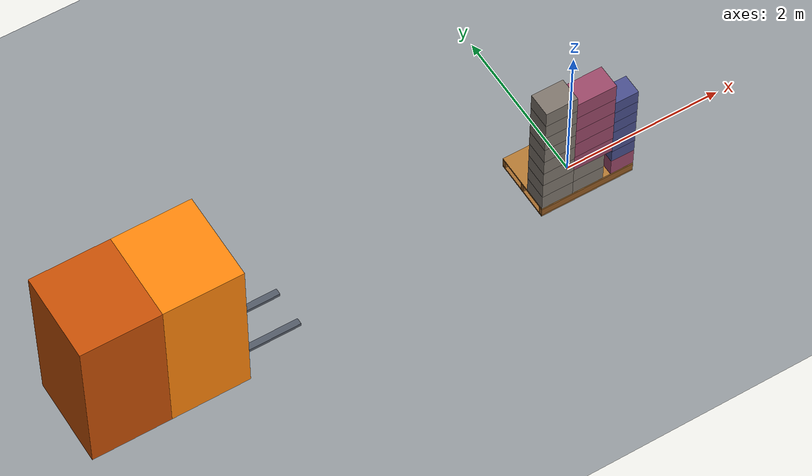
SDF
<sdf version="1.10">
 <world name="pallet_stacker_world">
  <model name="ground_plane">
   <static>true</static>
   <pose>-2.022 0 0 0 0 0</pose>
   <link name="link">
    <collision name="collision">
     <max_contacts>4</max_contacts>
     <geometry><plane><normal>0 0 1</normal><size>20 20</size></plane></geometry>
     <surface>
      <friction>
       <ode><mu>0.8</mu><mu2>0.8</mu2></ode>
       <bullet><friction>0.8</friction><friction2>0.8</friction2></bullet>
      </friction>
      <bounce><restitution_coefficient>0</restitution_coefficient><threshold>100000</threshold></bounce>
      <contact><ode><kp>1000000</kp><kd>100</kd><max_vel>1</max_vel><min_depth>0.0005</min_depth></ode></contact>
     </surface>
    </collision>
    <visual name="visual">
     <geometry><plane><normal>0 0 1</normal><size>20 20</size></plane></geometry>
     <material><ambient>0.58 0.6 0.62 1</ambient><diffuse>0.58 0.6 0.62 1</diffuse></material>
    </visual>
   </link>
  </model>
  <model name="pallet_01_PALLET_001" canonical_link="body">
   <pose>0 0 0.001 0 0 0</pose>
   <static>false</static>
   <frame name="loading_surface" attached_to="body"><pose relative_to="body">0 0 0.144 0 0 0</pose></frame>
   <link name="body">
    <inertial>
     <pose>0 0 0.072 0 0 0</pose>
     <mass>25</mass>
     <inertia>
      <ixx>1.70896776228</ixx>
      <ixy>0</ixy>
      <ixz>0</ixz>
      <iyy>3.07216082337</iyy>
      <iyz>0</iyz>
      <izz>4.63680693891</izz>
     </inertia>
    </inertial>
    <collision name="bottom_deck_collision">
     <max_contacts>4</max_contacts>
     <pose>0 0 0.011 0 0 0</pose>
     <geometry><box><size>1.2 0.8 0.022</size></box></geometry>
     <surface>
      <friction>
       <ode><mu>0.65</mu><mu2>0.65</mu2></ode>
       <bullet><friction>0.65</friction><friction2>0.65</friction2></bullet>
      </friction>
      <bounce><restitution_coefficient>0</restitution_coefficient><threshold>100000</threshold></bounce>
      <contact><ode><kp>1000000</kp><kd>100</kd><max_vel>1</max_vel><min_depth>0.0005</min_depth></ode></contact>
     </surface>
    </collision>
    <visual name="bottom_deck_visual">
     <pose>0 0 0.011 0 0 0</pose>
     <geometry><box><size>1.2 0.8 0.022</size></box></geometry>
     <material>
      <ambient>0.46 0.28 0.10 1</ambient>
      <diffuse>0.64 0.42 0.18 1</diffuse>
      <specular>0.03 0.03 0.03 1</specular>
     </material>
    </visual>
    <collision name="left_stringer_collision">
     <max_contacts>4</max_contacts>
     <pose>0 -0.375 0.072 0 0 0</pose>
     <geometry><box><size>1.2 0.05 0.1</size></box></geometry>
     <surface>
      <friction>
       <ode><mu>0.65</mu><mu2>0.65</mu2></ode>
       <bullet><friction>0.65</friction><friction2>0.65</friction2></bullet>
      </friction>
      <bounce><restitution_coefficient>0</restitution_coefficient><threshold>100000</threshold></bounce>
      <contact><ode><kp>1000000</kp><kd>100</kd><max_vel>1</max_vel><min_depth>0.0005</min_depth></ode></contact>
     </surface>
    </collision>
    <visual name="left_stringer_visual">
     <pose>0 -0.375 0.072 0 0 0</pose>
     <geometry><box><size>1.2 0.05 0.1</size></box></geometry>
     <material>
      <ambient>0.42 0.25 0.09 1</ambient>
      <diffuse>0.58 0.36 0.14 1</diffuse>
      <specular>0.03 0.03 0.03 1</specular>
     </material>
    </visual>
    <collision name="centre_stringer_collision">
     <max_contacts>4</max_contacts>
     <pose>0 0 0.072 0 0 0</pose>
     <geometry><box><size>1.2 0.05 0.1</size></box></geometry>
     <surface>
      <friction>
       <ode><mu>0.65</mu><mu2>0.65</mu2></ode>
       <bullet><friction>0.65</friction><friction2>0.65</friction2></bullet>
      </friction>
      <bounce><restitution_coefficient>0</restitution_coefficient><threshold>100000</threshold></bounce>
      <contact><ode><kp>1000000</kp><kd>100</kd><max_vel>1</max_vel><min_depth>0.0005</min_depth></ode></contact>
     </surface>
    </collision>
    <visual name="centre_stringer_visual">
     <pose>0 0 0.072 0 0 0</pose>
     <geometry><box><size>1.2 0.05 0.1</size></box></geometry>
     <material>
      <ambient>0.42 0.25 0.09 1</ambient>
      <diffuse>0.58 0.36 0.14 1</diffuse>
      <specular>0.03 0.03 0.03 1</specular>
     </material>
    </visual>
    <collision name="right_stringer_collision">
     <max_contacts>4</max_contacts>
     <pose>0 0.375 0.072 0 0 0</pose>
     <geometry><box><size>1.2 0.05 0.1</size></box></geometry>
     <surface>
      <friction>
       <ode><mu>0.65</mu><mu2>0.65</mu2></ode>
       <bullet><friction>0.65</friction><friction2>0.65</friction2></bullet>
      </friction>
      <bounce><restitution_coefficient>0</restitution_coefficient><threshold>100000</threshold></bounce>
      <contact><ode><kp>1000000</kp><kd>100</kd><max_vel>1</max_vel><min_depth>0.0005</min_depth></ode></contact>
     </surface>
    </collision>
    <visual name="right_stringer_visual">
     <pose>0 0.375 0.072 0 0 0</pose>
     <geometry><box><size>1.2 0.05 0.1</size></box></geometry>
     <material>
      <ambient>0.42 0.25 0.09 1</ambient>
      <diffuse>0.58 0.36 0.14 1</diffuse>
      <specular>0.03 0.03 0.03 1</specular>
     </material>
    </visual>
    <collision name="top_deck_collision">
     <max_contacts>4</max_contacts>
     <pose>0 0 0.133 0 0 0</pose>
     <geometry><box><size>1.2 0.8 0.022</size></box></geometry>
     <surface>
      <friction>
       <ode><mu>0.65</mu><mu2>0.65</mu2></ode>
       <bullet><friction>0.65</friction><friction2>0.65</friction2></bullet>
      </friction>
      <bounce><restitution_coefficient>0</restitution_coefficient><threshold>100000</threshold></bounce>
      <contact><ode><kp>1000000</kp><kd>100</kd><max_vel>1</max_vel><min_depth>0.0005</min_depth></ode></contact>
     </surface>
    </collision>
    <visual name="top_deck_visual">
     <pose>0 0 0.133 0 0 0</pose>
     <geometry><box><size>1.2 0.8 0.022</size></box></geometry>
     <material>
      <ambient>0.50 0.31 0.11 1</ambient>
      <diffuse>0.70 0.47 0.20 1</diffuse>
      <specular>0.03 0.03 0.03 1</specular>
     </material>
    </visual>
   </link>
  </model>
  <model name="box_p01_0001_MILK_001">
   <pose>-0.4 -0.25 0.256 0 0 0</pose>
   <static>false</static>
   <link name="body">
    <inertial>
     <mass>12</mass>
     <inertia><ixx>0.1384</ixx><ixy>0</ixy><ixz>0</ixz><iyy>0.2084</iyy><iyz>0</iyz><izz>0.25</izz></inertia>
    </inertial>
    <collision name="collision">
     <max_contacts>4</max_contacts>
     <geometry><box><size>0.4 0.3 0.22</size></box></geometry>
     <surface>
      <friction>
       <ode><mu>0.55</mu><mu2>0.55</mu2></ode>
       <bullet><friction>0.55</friction><friction2>0.55</friction2></bullet>
      </friction>
      <bounce><restitution_coefficient>0</restitution_coefficient><threshold>100000</threshold></bounce>
      <contact><ode><kp>1000000</kp><kd>100</kd><max_vel>1</max_vel><min_depth>0.0005</min_depth></ode></contact>
     </surface>
    </collision>
    <visual name="visual">
     <geometry><box><size>0.4 0.3 0.22</size></box></geometry>
     <material>
      <ambient>0.370588235294 0.344117647059 0.317647058824 1</ambient>
      <diffuse>0.494117647059 0.458823529412 0.423529411765 1</diffuse>
      <specular>0.08 0.08 0.08 1</specular>
     </material>
    </visual>
   </link>
  </model>
  <model name="box_p01_0002_MILK_002">
   <pose>-0.4 -0.25 0.476 0 0 0</pose>
   <static>false</static>
   <link name="body">
    <inertial>
     <mass>12</mass>
     <inertia><ixx>0.1384</ixx><ixy>0</ixy><ixz>0</ixz><iyy>0.2084</iyy><iyz>0</iyz><izz>0.25</izz></inertia>
    </inertial>
    <collision name="collision">
     <max_contacts>4</max_contacts>
     <geometry><box><size>0.4 0.3 0.22</size></box></geometry>
     <surface>
      <friction>
       <ode><mu>0.55</mu><mu2>0.55</mu2></ode>
       <bullet><friction>0.55</friction><friction2>0.55</friction2></bullet>
      </friction>
      <bounce><restitution_coefficient>0</restitution_coefficient><threshold>100000</threshold></bounce>
      <contact><ode><kp>1000000</kp><kd>100</kd><max_vel>1</max_vel><min_depth>0.0005</min_depth></ode></contact>
     </surface>
    </collision>
    <visual name="visual">
     <geometry><box><size>0.4 0.3 0.22</size></box></geometry>
     <material>
      <ambient>0.370588235294 0.344117647059 0.317647058824 1</ambient>
      <diffuse>0.494117647059 0.458823529412 0.423529411765 1</diffuse>
      <specular>0.08 0.08 0.08 1</specular>
     </material>
    </visual>
   </link>
  </model>
  <model name="box_p01_0003_MILK_003">
   <pose>-0.4 -0.25 0.696 0 0 0</pose>
   <static>false</static>
   <link name="body">
    <inertial>
     <mass>12</mass>
     <inertia><ixx>0.1384</ixx><ixy>0</ixy><ixz>0</ixz><iyy>0.2084</iyy><iyz>0</iyz><izz>0.25</izz></inertia>
    </inertial>
    <collision name="collision">
     <max_contacts>4</max_contacts>
     <geometry><box><size>0.4 0.3 0.22</size></box></geometry>
     <surface>
      <friction>
       <ode><mu>0.55</mu><mu2>0.55</mu2></ode>
       <bullet><friction>0.55</friction><friction2>0.55</friction2></bullet>
      </friction>
      <bounce><restitution_coefficient>0</restitution_coefficient><threshold>100000</threshold></bounce>
      <contact><ode><kp>1000000</kp><kd>100</kd><max_vel>1</max_vel><min_depth>0.0005</min_depth></ode></contact>
     </surface>
    </collision>
    <visual name="visual">
     <geometry><box><size>0.4 0.3 0.22</size></box></geometry>
     <material>
      <ambient>0.370588235294 0.344117647059 0.317647058824 1</ambient>
      <diffuse>0.494117647059 0.458823529412 0.423529411765 1</diffuse>
      <specular>0.08 0.08 0.08 1</specular>
     </material>
    </visual>
   </link>
  </model>
  <model name="box_p01_0004_MILK_004">
   <pose>-0.4 -0.25 0.916 0 0 0</pose>
   <static>false</static>
   <link name="body">
    <inertial>
     <mass>12</mass>
     <inertia><ixx>0.1384</ixx><ixy>0</ixy><ixz>0</ixz><iyy>0.2084</iyy><iyz>0</iyz><izz>0.25</izz></inertia>
    </inertial>
    <collision name="collision">
     <max_contacts>4</max_contacts>
     <geometry><box><size>0.4 0.3 0.22</size></box></geometry>
     <surface>
      <friction>
       <ode><mu>0.55</mu><mu2>0.55</mu2></ode>
       <bullet><friction>0.55</friction><friction2>0.55</friction2></bullet>
      </friction>
      <bounce><restitution_coefficient>0</restitution_coefficient><threshold>100000</threshold></bounce>
      <contact><ode><kp>1000000</kp><kd>100</kd><max_vel>1</max_vel><min_depth>0.0005</min_depth></ode></contact>
     </surface>
    </collision>
    <visual name="visual">
     <geometry><box><size>0.4 0.3 0.22</size></box></geometry>
     <material>
      <ambient>0.370588235294 0.344117647059 0.317647058824 1</ambient>
      <diffuse>0.494117647059 0.458823529412 0.423529411765 1</diffuse>
      <specular>0.08 0.08 0.08 1</specular>
     </material>
    </visual>
   </link>
  </model>
  <model name="box_p01_0005_MILK_005">
   <pose>-0.4 -0.25 1.136 0 0 0</pose>
   <static>false</static>
   <link name="body">
    <inertial>
     <mass>12</mass>
     <inertia><ixx>0.1384</ixx><ixy>0</ixy><ixz>0</ixz><iyy>0.2084</iyy><iyz>0</iyz><izz>0.25</izz></inertia>
    </inertial>
    <collision name="collision">
     <max_contacts>4</max_contacts>
     <geometry><box><size>0.4 0.3 0.22</size></box></geometry>
     <surface>
      <friction>
       <ode><mu>0.55</mu><mu2>0.55</mu2></ode>
       <bullet><friction>0.55</friction><friction2>0.55</friction2></bullet>
      </friction>
      <bounce><restitution_coefficient>0</restitution_coefficient><threshold>100000</threshold></bounce>
      <contact><ode><kp>1000000</kp><kd>100</kd><max_vel>1</max_vel><min_depth>0.0005</min_depth></ode></contact>
     </surface>
    </collision>
    <visual name="visual">
     <geometry><box><size>0.4 0.3 0.22</size></box></geometry>
     <material>
      <ambient>0.370588235294 0.344117647059 0.317647058824 1</ambient>
      <diffuse>0.494117647059 0.458823529412 0.423529411765 1</diffuse>
      <specular>0.08 0.08 0.08 1</specular>
     </material>
    </visual>
   </link>
  </model>
  <model name="box_p01_0006_MILK_006">
   <pose>-0.4 -0.25 1.356 0 0 0</pose>
   <static>false</static>
   <link name="body">
    <inertial>
     <mass>12</mass>
     <inertia><ixx>0.1384</ixx><ixy>0</ixy><ixz>0</ixz><iyy>0.2084</iyy><iyz>0</iyz><izz>0.25</izz></inertia>
    </inertial>
    <collision name="collision">
     <max_contacts>4</max_contacts>
     <geometry><box><size>0.4 0.3 0.22</size></box></geometry>
     <surface>
      <friction>
       <ode><mu>0.55</mu><mu2>0.55</mu2></ode>
       <bullet><friction>0.55</friction><friction2>0.55</friction2></bullet>
      </friction>
      <bounce><restitution_coefficient>0</restitution_coefficient><threshold>100000</threshold></bounce>
      <contact><ode><kp>1000000</kp><kd>100</kd><max_vel>1</max_vel><min_depth>0.0005</min_depth></ode></contact>
     </surface>
    </collision>
    <visual name="visual">
     <geometry><box><size>0.4 0.3 0.22</size></box></geometry>
     <material>
      <ambient>0.370588235294 0.344117647059 0.317647058824 1</ambient>
      <diffuse>0.494117647059 0.458823529412 0.423529411765 1</diffuse>
      <specular>0.08 0.08 0.08 1</specular>
     </material>
    </visual>
   </link>
  </model>
  <model name="box_p01_0007_MILK_007">
   <pose>-0.4 -0.25 1.576 0 0 0</pose>
   <static>false</static>
   <link name="body">
    <inertial>
     <mass>12</mass>
     <inertia><ixx>0.1384</ixx><ixy>0</ixy><ixz>0</ixz><iyy>0.2084</iyy><iyz>0</iyz><izz>0.25</izz></inertia>
    </inertial>
    <collision name="collision">
     <max_contacts>4</max_contacts>
     <geometry><box><size>0.4 0.3 0.22</size></box></geometry>
     <surface>
      <friction>
       <ode><mu>0.55</mu><mu2>0.55</mu2></ode>
       <bullet><friction>0.55</friction><friction2>0.55</friction2></bullet>
      </friction>
      <bounce><restitution_coefficient>0</restitution_coefficient><threshold>100000</threshold></bounce>
      <contact><ode><kp>1000000</kp><kd>100</kd><max_vel>1</max_vel><min_depth>0.0005</min_depth></ode></contact>
     </surface>
    </collision>
    <visual name="visual">
     <geometry><box><size>0.4 0.3 0.22</size></box></geometry>
     <material>
      <ambient>0.370588235294 0.344117647059 0.317647058824 1</ambient>
      <diffuse>0.494117647059 0.458823529412 0.423529411765 1</diffuse>
      <specular>0.08 0.08 0.08 1</specular>
     </material>
    </visual>
   </link>
  </model>
  <model name="box_p01_0008_MILK_008">
   <pose>-0.4 -0.25 1.796 0 0 0</pose>
   <static>false</static>
   <link name="body">
    <inertial>
     <mass>12</mass>
     <inertia><ixx>0.1384</ixx><ixy>0</ixy><ixz>0</ixz><iyy>0.2084</iyy><iyz>0</iyz><izz>0.25</izz></inertia>
    </inertial>
    <collision name="collision">
     <max_contacts>4</max_contacts>
     <geometry><box><size>0.4 0.3 0.22</size></box></geometry>
     <surface>
      <friction>
       <ode><mu>0.55</mu><mu2>0.55</mu2></ode>
       <bullet><friction>0.55</friction><friction2>0.55</friction2></bullet>
      </friction>
      <bounce><restitution_coefficient>0</restitution_coefficient><threshold>100000</threshold></bounce>
      <contact><ode><kp>1000000</kp><kd>100</kd><max_vel>1</max_vel><min_depth>0.0005</min_depth></ode></contact>
     </surface>
    </collision>
    <visual name="visual">
     <geometry><box><size>0.4 0.3 0.22</size></box></geometry>
     <material>
      <ambient>0.370588235294 0.344117647059 0.317647058824 1</ambient>
      <diffuse>0.494117647059 0.458823529412 0.423529411765 1</diffuse>
      <specular>0.08 0.08 0.08 1</specular>
     </material>
    </visual>
   </link>
  </model>
  <model name="box_p01_0009_MILK_009">
   <pose>5.55111512313e-17 -0.25 0.256 0 0 0</pose>
   <static>false</static>
   <link name="body">
    <inertial>
     <mass>12</mass>
     <inertia><ixx>0.1384</ixx><ixy>0</ixy><ixz>0</ixz><iyy>0.2084</iyy><iyz>0</iyz><izz>0.25</izz></inertia>
    </inertial>
    <collision name="collision">
     <max_contacts>4</max_contacts>
     <geometry><box><size>0.4 0.3 0.22</size></box></geometry>
     <surface>
      <friction>
       <ode><mu>0.55</mu><mu2>0.55</mu2></ode>
       <bullet><friction>0.55</friction><friction2>0.55</friction2></bullet>
      </friction>
      <bounce><restitution_coefficient>0</restitution_coefficient><threshold>100000</threshold></bounce>
      <contact><ode><kp>1000000</kp><kd>100</kd><max_vel>1</max_vel><min_depth>0.0005</min_depth></ode></contact>
     </surface>
    </collision>
    <visual name="visual">
     <geometry><box><size>0.4 0.3 0.22</size></box></geometry>
     <material>
      <ambient>0.370588235294 0.344117647059 0.317647058824 1</ambient>
      <diffuse>0.494117647059 0.458823529412 0.423529411765 1</diffuse>
      <specular>0.08 0.08 0.08 1</specular>
     </material>
    </visual>
   </link>
  </model>
  <model name="box_p01_0010_MILK_010">
   <pose>5.55111512313e-17 -0.25 0.476 0 0 0</pose>
   <static>false</static>
   <link name="body">
    <inertial>
     <mass>12</mass>
     <inertia><ixx>0.1384</ixx><ixy>0</ixy><ixz>0</ixz><iyy>0.2084</iyy><iyz>0</iyz><izz>0.25</izz></inertia>
    </inertial>
    <collision name="collision">
     <max_contacts>4</max_contacts>
     <geometry><box><size>0.4 0.3 0.22</size></box></geometry>
     <surface>
      <friction>
       <ode><mu>0.55</mu><mu2>0.55</mu2></ode>
       <bullet><friction>0.55</friction><friction2>0.55</friction2></bullet>
      </friction>
      <bounce><restitution_coefficient>0</restitution_coefficient><threshold>100000</threshold></bounce>
      <contact><ode><kp>1000000</kp><kd>100</kd><max_vel>1</max_vel><min_depth>0.0005</min_depth></ode></contact>
     </surface>
    </collision>
    <visual name="visual">
     <geometry><box><size>0.4 0.3 0.22</size></box></geometry>
     <material>
      <ambient>0.370588235294 0.344117647059 0.317647058824 1</ambient>
      <diffuse>0.494117647059 0.458823529412 0.423529411765 1</diffuse>
      <specular>0.08 0.08 0.08 1</specular>
     </material>
    </visual>
   </link>
  </model>
  <model name="box_p01_0011_CEREAL_011">
   <pose>0.05 -0.25 0.706 0 0 0</pose>
   <static>false</static>
   <link name="body">
    <inertial>
     <mass>4</mass>
     <inertia>
      <ixx>0.0492</ixx>
      <ixy>0</ixy>
      <ixz>0</ixz>
      <iyy>0.102533333333</iyy>
      <iyz>0</iyz>
      <izz>0.113333333333</izz>
     </inertia>
    </inertial>
    <collision name="collision">
     <max_contacts>4</max_contacts>
     <geometry><box><size>0.5 0.3 0.24</size></box></geometry>
     <surface>
      <friction>
       <ode><mu>0.55</mu><mu2>0.55</mu2></ode>
       <bullet><friction>0.55</friction><friction2>0.55</friction2></bullet>
      </friction>
      <bounce><restitution_coefficient>0</restitution_coefficient><threshold>100000</threshold></bounce>
      <contact><ode><kp>1000000</kp><kd>100</kd><max_vel>1</max_vel><min_depth>0.0005</min_depth></ode></contact>
     </surface>
    </collision>
    <visual name="visual">
     <geometry><box><size>0.5 0.3 0.24</size></box></geometry>
     <material>
      <ambient>0.45 0.208823529412 0.302941176471 1</ambient>
      <diffuse>0.6 0.278431372549 0.403921568627 1</diffuse>
      <specular>0.08 0.08 0.08 1</specular>
     </material>
    </visual>
   </link>
  </model>
  <model name="box_p01_0012_CEREAL_012">
   <pose>0.05 -0.25 0.946 0 0 0</pose>
   <static>false</static>
   <link name="body">
    <inertial>
     <mass>4</mass>
     <inertia>
      <ixx>0.0492</ixx>
      <ixy>0</ixy>
      <ixz>0</ixz>
      <iyy>0.102533333333</iyy>
      <iyz>0</iyz>
      <izz>0.113333333333</izz>
     </inertia>
    </inertial>
    <collision name="collision">
     <max_contacts>4</max_contacts>
     <geometry><box><size>0.5 0.3 0.24</size></box></geometry>
     <surface>
      <friction>
       <ode><mu>0.55</mu><mu2>0.55</mu2></ode>
       <bullet><friction>0.55</friction><friction2>0.55</friction2></bullet>
      </friction>
      <bounce><restitution_coefficient>0</restitution_coefficient><threshold>100000</threshold></bounce>
      <contact><ode><kp>1000000</kp><kd>100</kd><max_vel>1</max_vel><min_depth>0.0005</min_depth></ode></contact>
     </surface>
    </collision>
    <visual name="visual">
     <geometry><box><size>0.5 0.3 0.24</size></box></geometry>
     <material>
      <ambient>0.45 0.208823529412 0.302941176471 1</ambient>
      <diffuse>0.6 0.278431372549 0.403921568627 1</diffuse>
      <specular>0.08 0.08 0.08 1</specular>
     </material>
    </visual>
   </link>
  </model>
  <model name="box_p01_0013_CEREAL_013">
   <pose>0.05 -0.25 1.186 0 0 0</pose>
   <static>false</static>
   <link name="body">
    <inertial>
     <mass>4</mass>
     <inertia>
      <ixx>0.0492</ixx>
      <ixy>0</ixy>
      <ixz>0</ixz>
      <iyy>0.102533333333</iyy>
      <iyz>0</iyz>
      <izz>0.113333333333</izz>
     </inertia>
    </inertial>
    <collision name="collision">
     <max_contacts>4</max_contacts>
     <geometry><box><size>0.5 0.3 0.24</size></box></geometry>
     <surface>
      <friction>
       <ode><mu>0.55</mu><mu2>0.55</mu2></ode>
       <bullet><friction>0.55</friction><friction2>0.55</friction2></bullet>
      </friction>
      <bounce><restitution_coefficient>0</restitution_coefficient><threshold>100000</threshold></bounce>
      <contact><ode><kp>1000000</kp><kd>100</kd><max_vel>1</max_vel><min_depth>0.0005</min_depth></ode></contact>
     </surface>
    </collision>
    <visual name="visual">
     <geometry><box><size>0.5 0.3 0.24</size></box></geometry>
     <material>
      <ambient>0.45 0.208823529412 0.302941176471 1</ambient>
      <diffuse>0.6 0.278431372549 0.403921568627 1</diffuse>
      <specular>0.08 0.08 0.08 1</specular>
     </material>
    </visual>
   </link>
  </model>
  <model name="box_p01_0014_CEREAL_014">
   <pose>0.05 -0.25 1.426 0 0 0</pose>
   <static>false</static>
   <link name="body">
    <inertial>
     <mass>4</mass>
     <inertia>
      <ixx>0.0492</ixx>
      <ixy>0</ixy>
      <ixz>0</ixz>
      <iyy>0.102533333333</iyy>
      <iyz>0</iyz>
      <izz>0.113333333333</izz>
     </inertia>
    </inertial>
    <collision name="collision">
     <max_contacts>4</max_contacts>
     <geometry><box><size>0.5 0.3 0.24</size></box></geometry>
     <surface>
      <friction>
       <ode><mu>0.55</mu><mu2>0.55</mu2></ode>
       <bullet><friction>0.55</friction><friction2>0.55</friction2></bullet>
      </friction>
      <bounce><restitution_coefficient>0</restitution_coefficient><threshold>100000</threshold></bounce>
      <contact><ode><kp>1000000</kp><kd>100</kd><max_vel>1</max_vel><min_depth>0.0005</min_depth></ode></contact>
     </surface>
    </collision>
    <visual name="visual">
     <geometry><box><size>0.5 0.3 0.24</size></box></geometry>
     <material>
      <ambient>0.45 0.208823529412 0.302941176471 1</ambient>
      <diffuse>0.6 0.278431372549 0.403921568627 1</diffuse>
      <specular>0.08 0.08 0.08 1</specular>
     </material>
    </visual>
   </link>
  </model>
  <model name="box_p01_0015_CEREAL_015">
   <pose>0.05 -0.25 1.666 0 0 0</pose>
   <static>false</static>
   <link name="body">
    <inertial>
     <mass>4</mass>
     <inertia>
      <ixx>0.0492</ixx>
      <ixy>0</ixy>
      <ixz>0</ixz>
      <iyy>0.102533333333</iyy>
      <iyz>0</iyz>
      <izz>0.113333333333</izz>
     </inertia>
    </inertial>
    <collision name="collision">
     <max_contacts>4</max_contacts>
     <geometry><box><size>0.5 0.3 0.24</size></box></geometry>
     <surface>
      <friction>
       <ode><mu>0.55</mu><mu2>0.55</mu2></ode>
       <bullet><friction>0.55</friction><friction2>0.55</friction2></bullet>
      </friction>
      <bounce><restitution_coefficient>0</restitution_coefficient><threshold>100000</threshold></bounce>
      <contact><ode><kp>1000000</kp><kd>100</kd><max_vel>1</max_vel><min_depth>0.0005</min_depth></ode></contact>
     </surface>
    </collision>
    <visual name="visual">
     <geometry><box><size>0.5 0.3 0.24</size></box></geometry>
     <material>
      <ambient>0.45 0.208823529412 0.302941176471 1</ambient>
      <diffuse>0.6 0.278431372549 0.403921568627 1</diffuse>
      <specular>0.08 0.08 0.08 1</specular>
     </material>
    </visual>
   </link>
  </model>
  <model name="box_p01_0016_CEREAL_016">
   <pose>0.45 -0.15 0.266 0 0 0</pose>
   <static>false</static>
   <link name="body">
    <inertial>
     <mass>4</mass>
     <inertia>
      <ixx>0.102533333333</ixx>
      <ixy>0</ixy>
      <ixz>0</ixz>
      <iyy>0.0492</iyy>
      <iyz>0</iyz>
      <izz>0.113333333333</izz>
     </inertia>
    </inertial>
    <collision name="collision">
     <max_contacts>4</max_contacts>
     <geometry><box><size>0.3 0.5 0.24</size></box></geometry>
     <surface>
      <friction>
       <ode><mu>0.55</mu><mu2>0.55</mu2></ode>
       <bullet><friction>0.55</friction><friction2>0.55</friction2></bullet>
      </friction>
      <bounce><restitution_coefficient>0</restitution_coefficient><threshold>100000</threshold></bounce>
      <contact><ode><kp>1000000</kp><kd>100</kd><max_vel>1</max_vel><min_depth>0.0005</min_depth></ode></contact>
     </surface>
    </collision>
    <visual name="visual">
     <geometry><box><size>0.3 0.5 0.24</size></box></geometry>
     <material>
      <ambient>0.45 0.208823529412 0.302941176471 1</ambient>
      <diffuse>0.6 0.278431372549 0.403921568627 1</diffuse>
      <specular>0.08 0.08 0.08 1</specular>
     </material>
    </visual>
   </link>
  </model>
  <model name="box_p01_0017_CANS_017">
   <pose>0.45 -0.275 0.476 0 0 0</pose>
   <static>false</static>
   <link name="body">
    <inertial>
     <mass>10</mass>
     <inertia>
      <ixx>0.0790833333333</ixx>
      <ixy>0</ixy>
      <ixz>0</ixz>
      <iyy>0.102</iyy>
      <iyz>0</iyz>
      <izz>0.127083333333</izz>
     </inertia>
    </inertial>
    <collision name="collision">
     <max_contacts>4</max_contacts>
     <geometry><box><size>0.3 0.25 0.18</size></box></geometry>
     <surface>
      <friction>
       <ode><mu>0.55</mu><mu2>0.55</mu2></ode>
       <bullet><friction>0.55</friction><friction2>0.55</friction2></bullet>
      </friction>
      <bounce><restitution_coefficient>0</restitution_coefficient><threshold>100000</threshold></bounce>
      <contact><ode><kp>1000000</kp><kd>100</kd><max_vel>1</max_vel><min_depth>0.0005</min_depth></ode></contact>
     </surface>
    </collision>
    <visual name="visual">
     <geometry><box><size>0.3 0.25 0.18</size></box></geometry>
     <material>
      <ambient>0.211764705882 0.229411764706 0.411764705882 1</ambient>
      <diffuse>0.282352941176 0.305882352941 0.549019607843 1</diffuse>
      <specular>0.08 0.08 0.08 1</specular>
     </material>
    </visual>
   </link>
  </model>
  <model name="box_p01_0018_CANS_018">
   <pose>0.45 -0.275 0.656 0 0 0</pose>
   <static>false</static>
   <link name="body">
    <inertial>
     <mass>10</mass>
     <inertia>
      <ixx>0.0790833333333</ixx>
      <ixy>0</ixy>
      <ixz>0</ixz>
      <iyy>0.102</iyy>
      <iyz>0</iyz>
      <izz>0.127083333333</izz>
     </inertia>
    </inertial>
    <collision name="collision">
     <max_contacts>4</max_contacts>
     <geometry><box><size>0.3 0.25 0.18</size></box></geometry>
     <surface>
      <friction>
       <ode><mu>0.55</mu><mu2>0.55</mu2></ode>
       <bullet><friction>0.55</friction><friction2>0.55</friction2></bullet>
      </friction>
      <bounce><restitution_coefficient>0</restitution_coefficient><threshold>100000</threshold></bounce>
      <contact><ode><kp>1000000</kp><kd>100</kd><max_vel>1</max_vel><min_depth>0.0005</min_depth></ode></contact>
     </surface>
    </collision>
    <visual name="visual">
     <geometry><box><size>0.3 0.25 0.18</size></box></geometry>
     <material>
      <ambient>0.211764705882 0.229411764706 0.411764705882 1</ambient>
      <diffuse>0.282352941176 0.305882352941 0.549019607843 1</diffuse>
      <specular>0.08 0.08 0.08 1</specular>
     </material>
    </visual>
   </link>
  </model>
  <model name="box_p01_0019_CANS_019">
   <pose>0.45 -0.275 0.836 0 0 0</pose>
   <static>false</static>
   <link name="body">
    <inertial>
     <mass>10</mass>
     <inertia>
      <ixx>0.0790833333333</ixx>
      <ixy>0</ixy>
      <ixz>0</ixz>
      <iyy>0.102</iyy>
      <iyz>0</iyz>
      <izz>0.127083333333</izz>
     </inertia>
    </inertial>
    <collision name="collision">
     <max_contacts>4</max_contacts>
     <geometry><box><size>0.3 0.25 0.18</size></box></geometry>
     <surface>
      <friction>
       <ode><mu>0.55</mu><mu2>0.55</mu2></ode>
       <bullet><friction>0.55</friction><friction2>0.55</friction2></bullet>
      </friction>
      <bounce><restitution_coefficient>0</restitution_coefficient><threshold>100000</threshold></bounce>
      <contact><ode><kp>1000000</kp><kd>100</kd><max_vel>1</max_vel><min_depth>0.0005</min_depth></ode></contact>
     </surface>
    </collision>
    <visual name="visual">
     <geometry><box><size>0.3 0.25 0.18</size></box></geometry>
     <material>
      <ambient>0.211764705882 0.229411764706 0.411764705882 1</ambient>
      <diffuse>0.282352941176 0.305882352941 0.549019607843 1</diffuse>
      <specular>0.08 0.08 0.08 1</specular>
     </material>
    </visual>
   </link>
  </model>
  <model name="box_p01_0020_CANS_020">
   <pose>0.45 -0.275 1.016 0 0 0</pose>
   <static>false</static>
   <link name="body">
    <inertial>
     <mass>10</mass>
     <inertia>
      <ixx>0.0790833333333</ixx>
      <ixy>0</ixy>
      <ixz>0</ixz>
      <iyy>0.102</iyy>
      <iyz>0</iyz>
      <izz>0.127083333333</izz>
     </inertia>
    </inertial>
    <collision name="collision">
     <max_contacts>4</max_contacts>
     <geometry><box><size>0.3 0.25 0.18</size></box></geometry>
     <surface>
      <friction>
       <ode><mu>0.55</mu><mu2>0.55</mu2></ode>
       <bullet><friction>0.55</friction><friction2>0.55</friction2></bullet>
      </friction>
      <bounce><restitution_coefficient>0</restitution_coefficient><threshold>100000</threshold></bounce>
      <contact><ode><kp>1000000</kp><kd>100</kd><max_vel>1</max_vel><min_depth>0.0005</min_depth></ode></contact>
     </surface>
    </collision>
    <visual name="visual">
     <geometry><box><size>0.3 0.25 0.18</size></box></geometry>
     <material>
      <ambient>0.211764705882 0.229411764706 0.411764705882 1</ambient>
      <diffuse>0.282352941176 0.305882352941 0.549019607843 1</diffuse>
      <specular>0.08 0.08 0.08 1</specular>
     </material>
    </visual>
   </link>
  </model>
  <model name="box_p01_0021_CANS_021">
   <pose>0.45 -0.275 1.196 0 0 0</pose>
   <static>false</static>
   <link name="body">
    <inertial>
     <mass>10</mass>
     <inertia>
      <ixx>0.0790833333333</ixx>
      <ixy>0</ixy>
      <ixz>0</ixz>
      <iyy>0.102</iyy>
      <iyz>0</iyz>
      <izz>0.127083333333</izz>
     </inertia>
    </inertial>
    <collision name="collision">
     <max_contacts>4</max_contacts>
     <geometry><box><size>0.3 0.25 0.18</size></box></geometry>
     <surface>
      <friction>
       <ode><mu>0.55</mu><mu2>0.55</mu2></ode>
       <bullet><friction>0.55</friction><friction2>0.55</friction2></bullet>
      </friction>
      <bounce><restitution_coefficient>0</restitution_coefficient><threshold>100000</threshold></bounce>
      <contact><ode><kp>1000000</kp><kd>100</kd><max_vel>1</max_vel><min_depth>0.0005</min_depth></ode></contact>
     </surface>
    </collision>
    <visual name="visual">
     <geometry><box><size>0.3 0.25 0.18</size></box></geometry>
     <material>
      <ambient>0.211764705882 0.229411764706 0.411764705882 1</ambient>
      <diffuse>0.282352941176 0.305882352941 0.549019607843 1</diffuse>
      <specular>0.08 0.08 0.08 1</specular>
     </material>
    </visual>
   </link>
  </model>
  <model name="box_p01_0022_CANS_022">
   <pose>0.45 -0.275 1.376 0 0 0</pose>
   <static>false</static>
   <link name="body">
    <inertial>
     <mass>10</mass>
     <inertia>
      <ixx>0.0790833333333</ixx>
      <ixy>0</ixy>
      <ixz>0</ixz>
      <iyy>0.102</iyy>
      <iyz>0</iyz>
      <izz>0.127083333333</izz>
     </inertia>
    </inertial>
    <collision name="collision">
     <max_contacts>4</max_contacts>
     <geometry><box><size>0.3 0.25 0.18</size></box></geometry>
     <surface>
      <friction>
       <ode><mu>0.55</mu><mu2>0.55</mu2></ode>
       <bullet><friction>0.55</friction><friction2>0.55</friction2></bullet>
      </friction>
      <bounce><restitution_coefficient>0</restitution_coefficient><threshold>100000</threshold></bounce>
      <contact><ode><kp>1000000</kp><kd>100</kd><max_vel>1</max_vel><min_depth>0.0005</min_depth></ode></contact>
     </surface>
    </collision>
    <visual name="visual">
     <geometry><box><size>0.3 0.25 0.18</size></box></geometry>
     <material>
      <ambient>0.211764705882 0.229411764706 0.411764705882 1</ambient>
      <diffuse>0.282352941176 0.305882352941 0.549019607843 1</diffuse>
      <specular>0.08 0.08 0.08 1</specular>
     </material>
    </visual>
   </link>
  </model>
  <model name="simple_forklift" canonical_link="body">
   <pose>-4.4 0 0.001 0 0 0</pose>
   <static>false</static>
   <allow_auto_disable>false</allow_auto_disable>
   <frame name="fork_tip_low" attached_to="body"><pose relative_to="body">0.8 0 0.05 0 0 0</pose></frame>
   <link name="body">
    <inertial>
     <pose>-1.134 0 1.0175 0 0 0</pose>
     <mass>3007</mass>
     <inertia>
      <ixx>1340.37676517</ixx>
      <ixy>0</ixy>
      <ixz>0</ixz>
      <iyy>1905.79475258</iyy>
      <iyz>0</iyz>
      <izz>1170.72758858</izz>
     </inertia>
    </inertial>
    <collision name="front_body_collision">
     <max_contacts>4</max_contacts>
     <pose>-0.486 0 1.0175 0 0 0</pose>
     <geometry><box><size>0.972 1.099 2.035</size></box></geometry>
     <surface>
      <friction>
       <ode><mu>0.02</mu><mu2>0.02</mu2></ode>
       <bullet><friction>0.02</friction><friction2>0.02</friction2><rolling_friction>0.02</rolling_friction></bullet>
      </friction>
      <bounce><restitution_coefficient>0</restitution_coefficient><threshold>100000</threshold></bounce>
      <contact><ode><kp>1000000</kp><kd>100</kd><max_vel>1</max_vel><min_depth>0.0005</min_depth></ode></contact>
     </surface>
    </collision>
    <visual name="front_body_visual">
     <pose>-0.486 0 1.0175 0 0 0</pose>
     <geometry><box><size>0.972 1.099 2.035</size></box></geometry>
     <material>
      <ambient>0.95 0.45 0.02 1</ambient>
      <diffuse>1.00 0.52 0.04 1</diffuse>
      <specular>0.15 0.15 0.15 1</specular>
     </material>
    </visual>
    <collision name="rear_body_collision">
     <max_contacts>4</max_contacts>
     <pose>-1.458 0 1.0175 0 0 0</pose>
     <geometry><box><size>0.972 1.099 2.035</size></box></geometry>
     <surface>
      <friction>
       <ode><mu>0.02</mu><mu2>0.02</mu2></ode>
       <bullet><friction>0.02</friction><friction2>0.02</friction2><rolling_friction>0.02</rolling_friction></bullet>
      </friction>
      <bounce><restitution_coefficient>0</restitution_coefficient><threshold>100000</threshold></bounce>
      <contact><ode><kp>1000000</kp><kd>100</kd><max_vel>1</max_vel><min_depth>0.0005</min_depth></ode></contact>
     </surface>
    </collision>
    <visual name="rear_body_visual">
     <pose>-1.458 0 1.0175 0 0 0</pose>
     <geometry><box><size>0.972 1.099 2.035</size></box></geometry>
     <material>
      <ambient>0.65 0.25 0.01 1</ambient>
      <diffuse>0.78 0.31 0.02 1</diffuse>
      <specular>0.12 0.12 0.12 1</specular>
     </material>
    </visual>
   </link>
   <link name="left_fork">
    <pose>0.4 0.225 0.05 0 0 0</pose>
    <inertial>
     <mass>25</mass>
     <inertia>
      <ixx>0.0166666666667</ixx>
      <ixy>0</ixy>
      <ixz>0</ixz>
      <iyy>1.33666666667</iyy>
      <iyz>0</iyz>
      <izz>1.34666666667</izz>
     </inertia>
    </inertial>
    <collision name="collision">
     <max_contacts>4</max_contacts>
     <geometry><box><size>0.8 0.08 0.04</size></box></geometry>
     <surface>
      <friction>
       <ode><mu>0.5</mu><mu2>0.5</mu2></ode>
       <bullet><friction>0.5</friction><friction2>0.5</friction2><rolling_friction>0.5</rolling_friction></bullet>
      </friction>
      <bounce><restitution_coefficient>0</restitution_coefficient><threshold>100000</threshold></bounce>
      <contact><ode><kp>1000000</kp><kd>100</kd><max_vel>1</max_vel><min_depth>0.0005</min_depth></ode></contact>
     </surface>
    </collision>
    <visual name="visual">
     <geometry><box><size>0.8 0.08 0.04</size></box></geometry>
     <material>
      <ambient>0.22 0.24 0.27 1</ambient>
      <diffuse>0.32 0.35 0.40 1</diffuse>
      <specular>0.55 0.55 0.55 1</specular>
     </material>
    </visual>
   </link>
   <link name="right_fork">
    <pose>0.4 -0.225 0.05 0 0 0</pose>
    <inertial>
     <mass>25</mass>
     <inertia>
      <ixx>0.0166666666667</ixx>
      <ixy>0</ixy>
      <ixz>0</ixz>
      <iyy>1.33666666667</iyy>
      <iyz>0</iyz>
      <izz>1.34666666667</izz>
     </inertia>
    </inertial>
    <collision name="collision">
     <max_contacts>4</max_contacts>
     <geometry><box><size>0.8 0.08 0.04</size></box></geometry>
     <surface>
      <friction>
       <ode><mu>0.5</mu><mu2>0.5</mu2></ode>
       <bullet><friction>0.5</friction><friction2>0.5</friction2><rolling_friction>0.5</rolling_friction></bullet>
      </friction>
      <bounce><restitution_coefficient>0</restitution_coefficient><threshold>100000</threshold></bounce>
      <contact><ode><kp>1000000</kp><kd>100</kd><max_vel>1</max_vel><min_depth>0.0005</min_depth></ode></contact>
     </surface>
    </collision>
    <visual name="visual">
     <geometry><box><size>0.8 0.08 0.04</size></box></geometry>
     <material>
      <ambient>0.22 0.24 0.27 1</ambient>
      <diffuse>0.32 0.35 0.40 1</diffuse>
      <specular>0.55 0.55 0.55 1</specular>
     </material>
    </visual>
   </link>
   <joint name="left_fork_lift_joint" type="prismatic">
    <parent>body</parent>
    <child>left_fork</child>
    <axis>
     <xyz>0 0 1</xyz>
     <limit><lower>0</lower><upper>1.8</upper><effort>12000</effort></limit>
     <dynamics><damping>50</damping><friction>10</friction></dynamics>
    </axis>
   </joint>
   <joint name="right_fork_lift_joint" type="prismatic">
    <parent>body</parent>
    <child>right_fork</child>
    <axis>
     <xyz>0 0 1</xyz>
     <limit><lower>0</lower><upper>1.8</upper><effort>12000</effort></limit>
     <dynamics><damping>50</damping><friction>10</friction></dynamics>
    </axis>
   </joint>
   <plugin filename="gz-sim-velocity-control-system" name="gz::sim::systems::VelocityControl">
    <topic>/forklift/cmd_vel</topic>
   </plugin>
   <plugin filename="gz-sim-joint-position-controller-system" name="gz::sim::systems::JointPositionController">
    <joint_name>left_fork_lift_joint</joint_name>
    <joint_name>right_fork_lift_joint</joint_name>
    <topic>/forklift/fork_position</topic>
    <initial_position>0</initial_position>
    <use_velocity_commands>true</use_velocity_commands>
    <cmd_max>0.5</cmd_max>
    <cmd_min>-0.5</cmd_min>
   </plugin>
  </model>
 </world>
</sdf>
